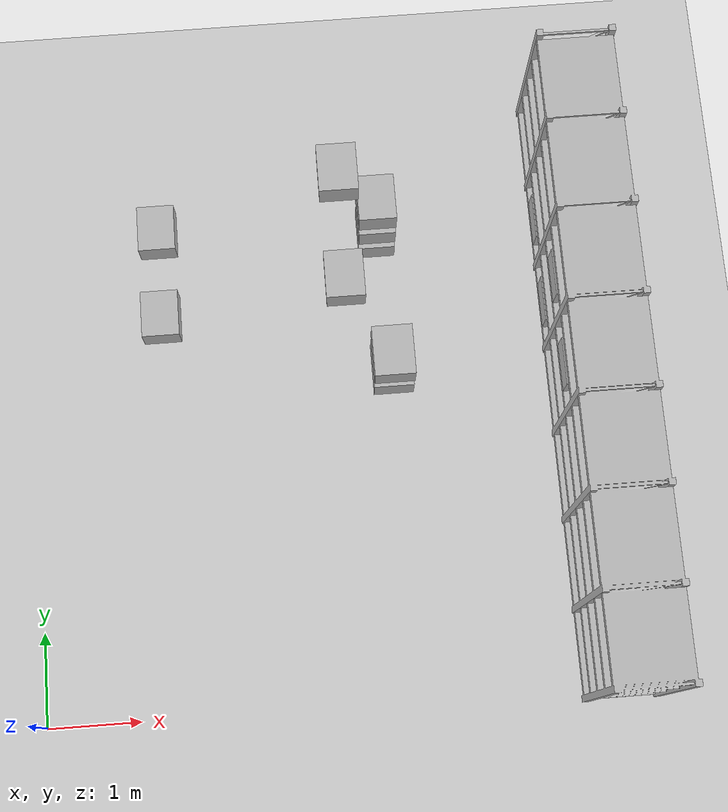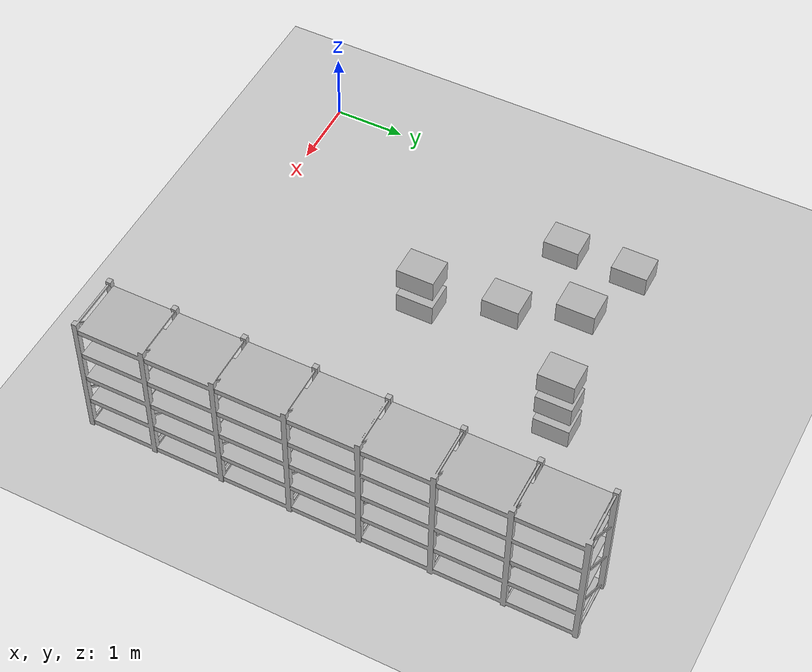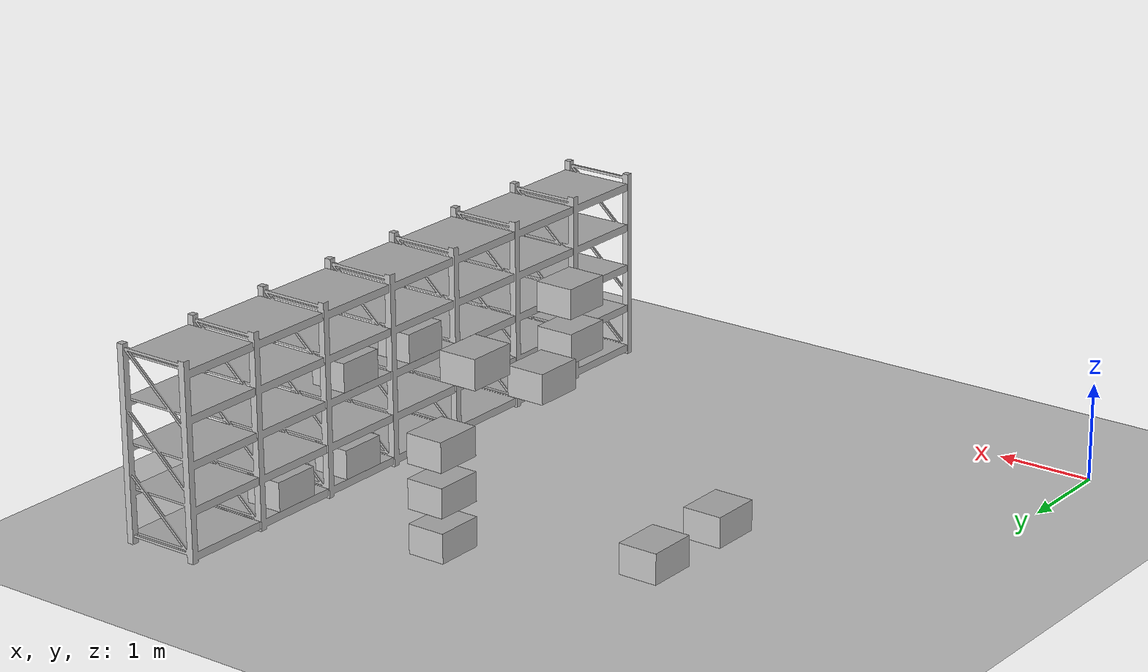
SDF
<sdf version="1.6">
 <world name="default">
  <model name="ground_plane">
   <static>1</static>
   <link name="link">
    <collision name="collision">
     <geometry><plane><normal>0 0 1</normal><size>100 100</size></plane></geometry>
     <surface><friction><ode><mu>100</mu><mu2>50</mu2></ode></friction></surface>
    </collision>
    <visual name="visual">
     <cast_shadows>0</cast_shadows>
     <geometry><plane><normal>0 0 1</normal><size>100 100</size></plane></geometry>
     <material>
      <script><uri>file://media/materials/scripts/gazebo.material</uri><name>Gazebo/Grey</name></script>
     </material>
    </visual>
   </link>
  </model>
  <model name="box_A_042">
   <pose>1.4649 4.2237 0.702 0 0 0</pose>
   <link name="link">
    <inertial>
     <mass>2.0</mass>
     <inertia><ixx>0.05667</ixx><iyy>0.04167</iyy><izz>0.06833</izz><ixy>0</ixy><ixz>0</ixz><iyz>0</iyz></inertia>
    </inertial>
    <collision name="collision">
     <geometry><box><size>0.4 0.5 0.3</size></box></geometry>
     <surface><friction><ode><mu>1.0</mu><mu2>1.0</mu2></ode></friction></surface>
    </collision>
    <visual name="visual">
     <cast_shadows>0</cast_shadows>
     <geometry><box><size>0.4 0.5 0.3</size></box></geometry>
     <material>
      <script>
       <uri>model://labeled_boxes/materials/scripts</uri>
       <uri>model://labeled_boxes/materials/textures</uri>
       <name>LabeledBox/A-042</name>
      </script>
     </material>
    </visual>
   </link>
  </model>
  <model name="box_A_043">
   <pose>1.4649 5.1951 0.702 0 0 0</pose>
   <link name="link">
    <inertial>
     <mass>2.0</mass>
     <inertia><ixx>0.05667</ixx><iyy>0.04167</iyy><izz>0.06833</izz><ixy>0</ixy><ixz>0</ixz><iyz>0</iyz></inertia>
    </inertial>
    <collision name="collision">
     <geometry><box><size>0.4 0.5 0.3</size></box></geometry>
     <surface><friction><ode><mu>1.0</mu><mu2>1.0</mu2></ode></friction></surface>
    </collision>
    <visual name="visual">
     <cast_shadows>0</cast_shadows>
     <geometry><box><size>0.4 0.5 0.3</size></box></geometry>
     <material>
      <script>
       <uri>model://labeled_boxes/materials/scripts</uri>
       <uri>model://labeled_boxes/materials/textures</uri>
       <name>LabeledBox/A-043</name>
      </script>
     </material>
    </visual>
   </link>
  </model>
  <model name="box_A_072">
   <pose>3.8649 3.2523 1.602 0 0 0</pose>
   <link name="link">
    <inertial>
     <mass>2.0</mass>
     <inertia><ixx>0.05667</ixx><iyy>0.04167</iyy><izz>0.06833</izz><ixy>0</ixy><ixz>0</ixz><iyz>0</iyz></inertia>
    </inertial>
    <collision name="collision">
     <geometry><box><size>0.4 0.5 0.3</size></box></geometry>
     <surface><friction><ode><mu>1.0</mu><mu2>1.0</mu2></ode></friction></surface>
    </collision>
    <visual name="visual">
     <cast_shadows>0</cast_shadows>
     <geometry><box><size>0.4 0.5 0.3</size></box></geometry>
     <material>
      <script>
       <uri>model://labeled_boxes/materials/scripts</uri>
       <uri>model://labeled_boxes/materials/textures</uri>
       <name>LabeledBox/A-072</name>
      </script>
     </material>
    </visual>
   </link>
  </model>
  <model name="box_A_073">
   <pose>3.8649 3.2523 2.052 0 0 0</pose>
   <link name="link">
    <inertial>
     <mass>2.0</mass>
     <inertia><ixx>0.05667</ixx><iyy>0.04167</iyy><izz>0.06833</izz><ixy>0</ixy><ixz>0</ixz><iyz>0</iyz></inertia>
    </inertial>
    <collision name="collision">
     <geometry><box><size>0.4 0.5 0.3</size></box></geometry>
     <surface><friction><ode><mu>1.0</mu><mu2>1.0</mu2></ode></friction></surface>
    </collision>
    <visual name="visual">
     <cast_shadows>0</cast_shadows>
     <geometry><box><size>0.4 0.5 0.3</size></box></geometry>
     <material>
      <script>
       <uri>model://labeled_boxes/materials/scripts</uri>
       <uri>model://labeled_boxes/materials/textures</uri>
       <name>LabeledBox/A-073</name>
      </script>
     </material>
    </visual>
   </link>
  </model>
  <model name="box_A_074">
   <pose>3.4549 4.2237 1.602 0 0 0</pose>
   <link name="link">
    <inertial>
     <mass>2.0</mass>
     <inertia><ixx>0.05667</ixx><iyy>0.04167</iyy><izz>0.06833</izz><ixy>0</ixy><ixz>0</ixz><iyz>0</iyz></inertia>
    </inertial>
    <collision name="collision">
     <geometry><box><size>0.4 0.5 0.3</size></box></geometry>
     <surface><friction><ode><mu>1.0</mu><mu2>1.0</mu2></ode></friction></surface>
    </collision>
    <visual name="visual">
     <cast_shadows>0</cast_shadows>
     <geometry><box><size>0.4 0.5 0.3</size></box></geometry>
     <material>
      <script>
       <uri>model://labeled_boxes/materials/scripts</uri>
       <uri>model://labeled_boxes/materials/textures</uri>
       <name>LabeledBox/A-074</name>
      </script>
     </material>
    </visual>
   </link>
  </model>
  <model name="box_A_075">
   <pose>3.8649 5.1951 0.252 0 0 0</pose>
   <link name="link">
    <inertial>
     <mass>2.0</mass>
     <inertia><ixx>0.05667</ixx><iyy>0.04167</iyy><izz>0.06833</izz><ixy>0</ixy><ixz>0</ixz><iyz>0</iyz></inertia>
    </inertial>
    <collision name="collision">
     <geometry><box><size>0.4 0.5 0.3</size></box></geometry>
     <surface><friction><ode><mu>1.0</mu><mu2>1.0</mu2></ode></friction></surface>
    </collision>
    <visual name="visual">
     <cast_shadows>0</cast_shadows>
     <geometry><box><size>0.4 0.5 0.3</size></box></geometry>
     <material>
      <script>
       <uri>model://labeled_boxes/materials/scripts</uri>
       <uri>model://labeled_boxes/materials/textures</uri>
       <name>LabeledBox/A-075</name>
      </script>
     </material>
    </visual>
   </link>
  </model>
  <model name="box_A_076">
   <pose>3.8649 5.1951 0.702 0 0 0</pose>
   <link name="link">
    <inertial>
     <mass>2.0</mass>
     <inertia><ixx>0.05667</ixx><iyy>0.04167</iyy><izz>0.06833</izz><ixy>0</ixy><ixz>0</ixz><iyz>0</iyz></inertia>
    </inertial>
    <collision name="collision">
     <geometry><box><size>0.4 0.5 0.3</size></box></geometry>
     <surface><friction><ode><mu>1.0</mu><mu2>1.0</mu2></ode></friction></surface>
    </collision>
    <visual name="visual">
     <cast_shadows>0</cast_shadows>
     <geometry><box><size>0.4 0.5 0.3</size></box></geometry>
     <material>
      <script>
       <uri>model://labeled_boxes/materials/scripts</uri>
       <uri>model://labeled_boxes/materials/textures</uri>
       <name>LabeledBox/A-076</name>
      </script>
     </material>
    </visual>
   </link>
  </model>
  <model name="box_A_077">
   <pose>3.8649 5.1951 1.152 0 0 0</pose>
   <link name="link">
    <inertial>
     <mass>2.0</mass>
     <inertia><ixx>0.05667</ixx><iyy>0.04167</iyy><izz>0.06833</izz><ixy>0</ixy><ixz>0</ixz><iyz>0</iyz></inertia>
    </inertial>
    <collision name="collision">
     <geometry><box><size>0.4 0.5 0.3</size></box></geometry>
     <surface><friction><ode><mu>1.0</mu><mu2>1.0</mu2></ode></friction></surface>
    </collision>
    <visual name="visual">
     <cast_shadows>0</cast_shadows>
     <geometry><box><size>0.4 0.5 0.3</size></box></geometry>
     <material>
      <script>
       <uri>model://labeled_boxes/materials/scripts</uri>
       <uri>model://labeled_boxes/materials/textures</uri>
       <name>LabeledBox/A-077</name>
      </script>
     </material>
    </visual>
   </link>
  </model>
  <model name="box_A_078">
   <pose>3.4549 5.1951 2.052 0 0 0</pose>
   <link name="link">
    <inertial>
     <mass>2.0</mass>
     <inertia><ixx>0.05667</ixx><iyy>0.04167</iyy><izz>0.06833</izz><ixy>0</ixy><ixz>0</ixz><iyz>0</iyz></inertia>
    </inertial>
    <collision name="collision">
     <geometry><box><size>0.4 0.5 0.3</size></box></geometry>
     <surface><friction><ode><mu>1.0</mu><mu2>1.0</mu2></ode></friction></surface>
    </collision>
    <visual name="visual">
     <cast_shadows>0</cast_shadows>
     <geometry><box><size>0.4 0.5 0.3</size></box></geometry>
     <material>
      <script>
       <uri>model://labeled_boxes/materials/scripts</uri>
       <uri>model://labeled_boxes/materials/textures</uri>
       <name>LabeledBox/A-078</name>
      </script>
     </material>
    </visual>
   </link>
  </model>
  <include>
   <name>rack_A4_1</name>
   <uri>model://warehouse_rack_5lvl_7bay</uri>
   <pose>6.0599 3.2523 0 0 0 0</pose>
  </include>
  <model name="box_A_099">
   <pose>5.8549 3.2523 1.152 0 0 0</pose>
   <link name="link">
    <inertial>
     <mass>2.0</mass>
     <inertia><ixx>0.05667</ixx><iyy>0.04167</iyy><izz>0.06833</izz><ixy>0</ixy><ixz>0</ixz><iyz>0</iyz></inertia>
    </inertial>
    <collision name="collision">
     <geometry><box><size>0.4 0.5 0.3</size></box></geometry>
     <surface><friction><ode><mu>1.0</mu><mu2>1.0</mu2></ode></friction></surface>
    </collision>
    <visual name="visual">
     <cast_shadows>0</cast_shadows>
     <geometry><box><size>0.4 0.5 0.3</size></box></geometry>
     <material>
      <script>
       <uri>model://labeled_boxes/materials/scripts</uri>
       <uri>model://labeled_boxes/materials/textures</uri>
       <name>LabeledBox/A-099</name>
      </script>
     </material>
    </visual>
   </link>
  </model>
  <model name="box_A_100">
   <pose>5.8549 4.2237 0.252 0 0 0</pose>
   <link name="link">
    <inertial>
     <mass>2.0</mass>
     <inertia><ixx>0.05667</ixx><iyy>0.04167</iyy><izz>0.06833</izz><ixy>0</ixy><ixz>0</ixz><iyz>0</iyz></inertia>
    </inertial>
    <collision name="collision">
     <geometry><box><size>0.4 0.5 0.3</size></box></geometry>
     <surface><friction><ode><mu>1.0</mu><mu2>1.0</mu2></ode></friction></surface>
    </collision>
    <visual name="visual">
     <cast_shadows>0</cast_shadows>
     <geometry><box><size>0.4 0.5 0.3</size></box></geometry>
     <material>
      <script>
       <uri>model://labeled_boxes/materials/scripts</uri>
       <uri>model://labeled_boxes/materials/textures</uri>
       <name>LabeledBox/A-100</name>
      </script>
     </material>
    </visual>
   </link>
  </model>
  <model name="box_A_101">
   <pose>5.8549 4.2237 1.152 0 0 0</pose>
   <link name="link">
    <inertial>
     <mass>2.0</mass>
     <inertia><ixx>0.05667</ixx><iyy>0.04167</iyy><izz>0.06833</izz><ixy>0</ixy><ixz>0</ixz><iyz>0</iyz></inertia>
    </inertial>
    <collision name="collision">
     <geometry><box><size>0.4 0.5 0.3</size></box></geometry>
     <surface><friction><ode><mu>1.0</mu><mu2>1.0</mu2></ode></friction></surface>
    </collision>
    <visual name="visual">
     <cast_shadows>0</cast_shadows>
     <geometry><box><size>0.4 0.5 0.3</size></box></geometry>
     <material>
      <script>
       <uri>model://labeled_boxes/materials/scripts</uri>
       <uri>model://labeled_boxes/materials/textures</uri>
       <name>LabeledBox/A-101</name>
      </script>
     </material>
    </visual>
   </link>
  </model>
  <model name="box_A_102">
   <pose>5.8549 5.1951 0.252 0 0 0</pose>
   <link name="link">
    <inertial>
     <mass>2.0</mass>
     <inertia><ixx>0.05667</ixx><iyy>0.04167</iyy><izz>0.06833</izz><ixy>0</ixy><ixz>0</ixz><iyz>0</iyz></inertia>
    </inertial>
    <collision name="collision">
     <geometry><box><size>0.4 0.5 0.3</size></box></geometry>
     <surface><friction><ode><mu>1.0</mu><mu2>1.0</mu2></ode></friction></surface>
    </collision>
    <visual name="visual">
     <cast_shadows>0</cast_shadows>
     <geometry><box><size>0.4 0.5 0.3</size></box></geometry>
     <material>
      <script>
       <uri>model://labeled_boxes/materials/scripts</uri>
       <uri>model://labeled_boxes/materials/textures</uri>
       <name>LabeledBox/A-102</name>
      </script>
     </material>
    </visual>
   </link>
  </model>
 </world>
</sdf>
